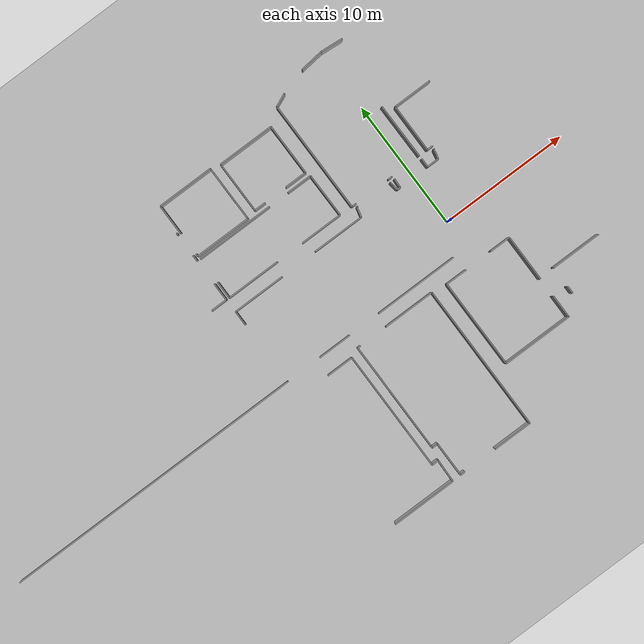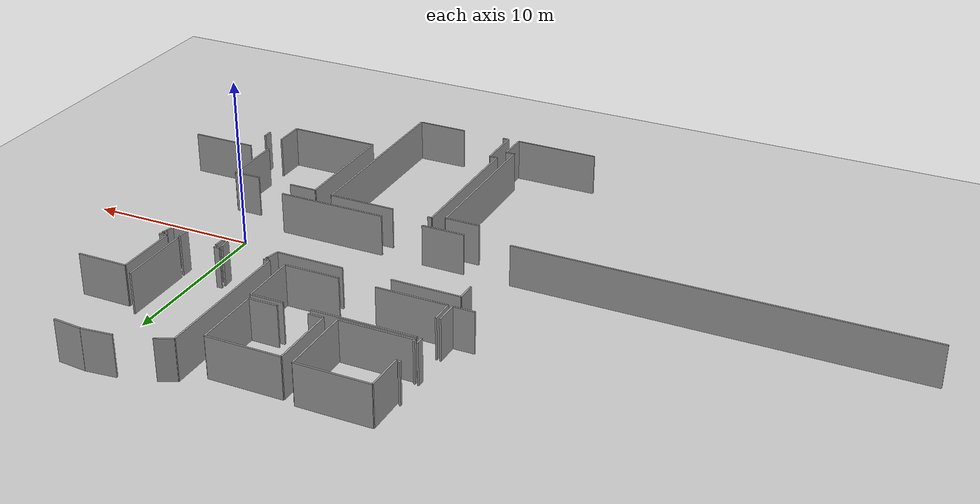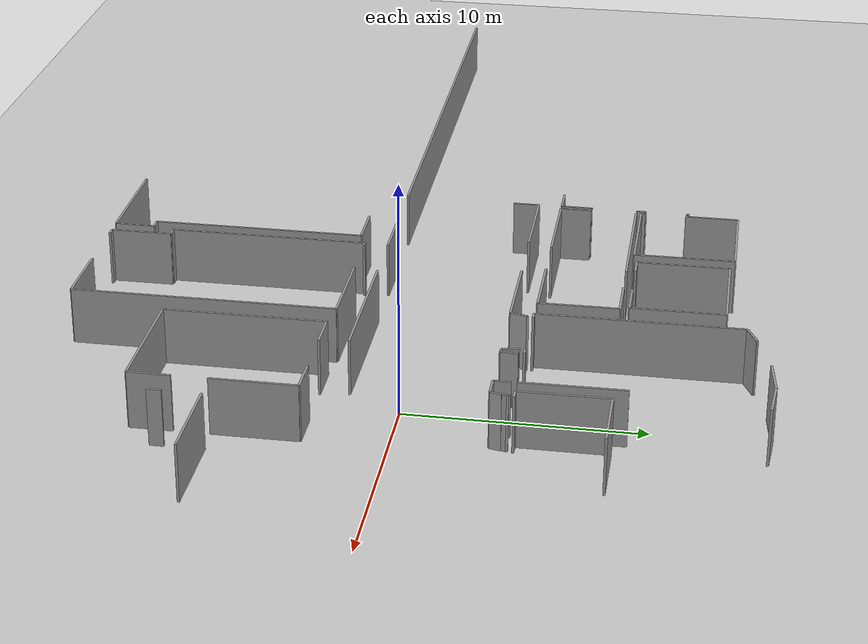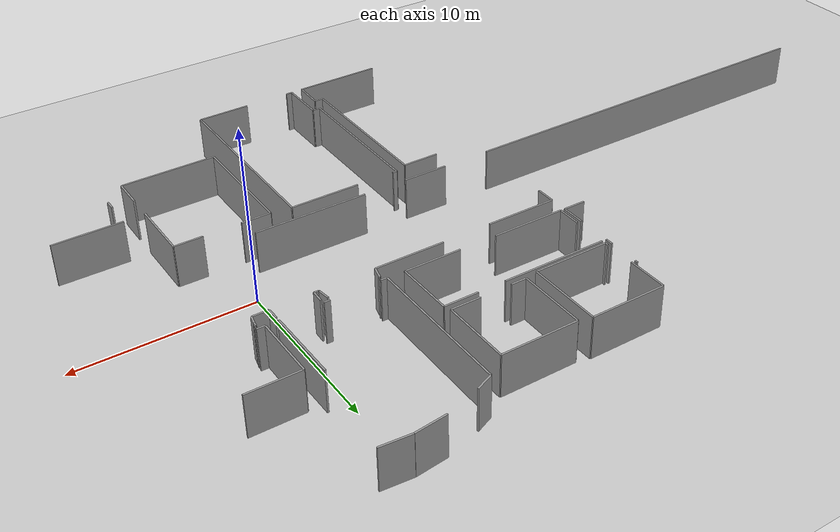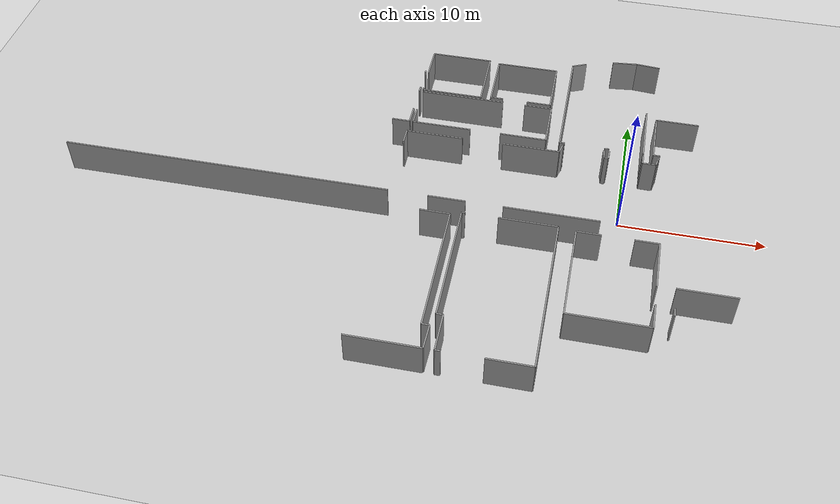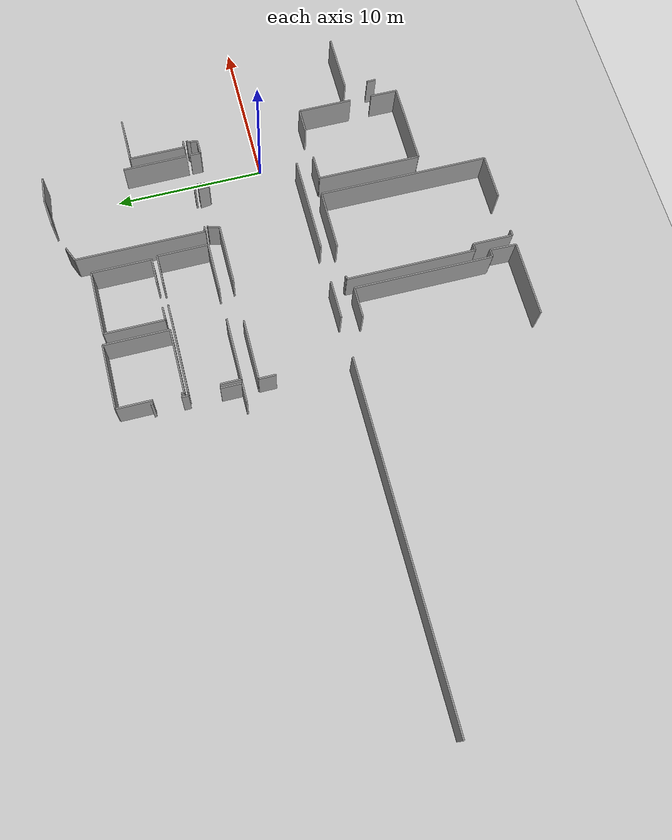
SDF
<sdf version="1.6">
 <world name="default">
  <model name="ground_plane">
   <static>1</static>
   <link name="link">
    <collision name="collision">
     <geometry><plane><normal>0 0 1</normal><size>100 100</size></plane></geometry>
     <surface><friction><ode><mu>100</mu><mu2>50</mu2></ode></friction></surface>
    </collision>
    <visual name="visual">
     <cast_shadows>0</cast_shadows>
     <geometry><plane><normal>0 0 1</normal><size>100 100</size></plane></geometry>
     <material>
      <script><uri>file://media/materials/scripts/gazebo.material</uri><name>Gazebo/Grey</name></script>
     </material>
    </visual>
   </link>
  </model>
  <model name="50056456">
   <static>1</static>
   <link name="Wall_32">
    <collision name="Wall_32_Collision">
     <geometry><box><size>6.50250311301 0.1 2.5</size></box></geometry>
     <pose>3.2512515565 0 1.25 0 0 0</pose>
    </collision>
    <visual name="Wall_32_Visual">
     <pose>3.2512515565 0 1.25 0 0 0</pose>
     <geometry><box><size>6.50250311301 0.1 2.5</size></box></geometry>
     <material>
      <script><uri>file://media/materials/scripts/gazebo.material</uri><name>Gazebo/Grey</name></script>
      <ambient>1 1 1 1</ambient>
     </material>
    </visual>
    <pose>54.3168746241 -17.0020245144 0 0 0 3.14159265359</pose>
   </link>
   <link name="Wall_33">
    <collision name="Wall_33_Collision">
     <geometry><box><size>2.58443241595 0.1 2.5</size></box></geometry>
     <pose>1.29221620797 0 1.25 0 0 0</pose>
    </collision>
    <visual name="Wall_33_Visual">
     <pose>1.29221620797 0 1.25 0 0 0</pose>
     <geometry><box><size>2.58443241595 0.1 2.5</size></box></geometry>
     <material>
      <script><uri>file://media/materials/scripts/gazebo.material</uri><name>Gazebo/Grey</name></script>
      <ambient>1 1 1 1</ambient>
     </material>
    </visual>
    <pose>45.2619586118 -17.0020245144 0 0 0 3.14159265359</pose>
   </link>
   <link name="Wall_34">
    <collision name="Wall_34_Collision">
     <geometry><box><size>23.3545949701 0.1 2.5</size></box></geometry>
     <pose>11.677297485 0 1.25 0 0 0</pose>
    </collision>
    <visual name="Wall_34_Visual">
     <pose>11.677297485 0 1.25 0 0 0</pose>
     <geometry><box><size>23.3545949701 0.1 2.5</size></box></geometry>
     <material>
      <script><uri>file://media/materials/scripts/gazebo.material</uri><name>Gazebo/Grey</name></script>
      <ambient>1 1 1 1</ambient>
     </material>
    </visual>
    <pose>39.8926753238 -17.0020245144 0 0 0 3.14159265359</pose>
   </link>
   <link name="Wall_48">
    <collision name="Wall_48_Collision">
     <geometry><box><size>1.14287650462 0.1 2.5</size></box></geometry>
     <pose>0.57143825231 0 1.25 0 0 0</pose>
    </collision>
    <visual name="Wall_48_Visual">
     <pose>0.57143825231 0 1.25 0 0 0</pose>
     <geometry><box><size>1.14287650462 0.1 2.5</size></box></geometry>
     <material>
      <script><uri>file://media/materials/scripts/gazebo.material</uri><name>Gazebo/Grey</name></script>
      <ambient>1 1 1 1</ambient>
     </material>
    </visual>
    <pose>39.9038567423 -12.0630564238 0 0 0 1.57079632679</pose>
   </link>
   <link name="Wall_49">
    <collision name="Wall_49_Collision">
     <geometry><box><size>4.05868550566 0.1 2.5</size></box></geometry>
     <pose>2.02934275283 0 1.25 0 0 0</pose>
    </collision>
    <visual name="Wall_49_Visual">
     <pose>2.02934275283 0 1.25 0 0 0</pose>
     <geometry><box><size>4.05868550566 0.1 2.5</size></box></geometry>
     <material>
      <script><uri>file://media/materials/scripts/gazebo.material</uri><name>Gazebo/Grey</name></script>
      <ambient>1 1 1 1</ambient>
     </material>
    </visual>
    <pose>39.9038567423 -10.9201799192 0 0 0 0.0</pose>
   </link>
   <link name="Wall_50">
    <collision name="Wall_50_Collision">
     <geometry><box><size>4.00955503037 0.1 2.5</size></box></geometry>
     <pose>2.00477751518 0 1.25 0 0 0</pose>
    </collision>
    <visual name="Wall_50_Visual">
     <pose>2.00477751518 0 1.25 0 0 0</pose>
     <geometry><box><size>4.00955503037 0.1 2.5</size></box></geometry>
     <material>
      <script><uri>file://media/materials/scripts/gazebo.material</uri><name>Gazebo/Grey</name></script>
      <ambient>1 1 1 1</ambient>
     </material>
    </visual>
    <pose>46.8470093941 -10.8973088359 0 0 0 0.0</pose>
   </link>
   <link name="Wall_51">
    <collision name="Wall_51_Collision">
     <geometry><box><size>0.763196289049 0.1 2.5</size></box></geometry>
     <pose>0.381598144524 0 1.25 0 0 0</pose>
    </collision>
    <visual name="Wall_51_Visual">
     <pose>0.381598144524 0 1.25 0 0 0</pose>
     <geometry><box><size>0.763196289049 0.1 2.5</size></box></geometry>
     <material>
      <script><uri>file://media/materials/scripts/gazebo.material</uri><name>Gazebo/Grey</name></script>
      <ambient>1 1 1 1</ambient>
     </material>
    </visual>
    <pose>50.8565644245 -10.8973088359 0 0 0 1.33669323767</pose>
   </link>
   <link name="Wall_52">
    <collision name="Wall_52_Collision">
     <geometry><box><size>0.0876133344174 0.1 2.5</size></box></geometry>
     <pose>0.0438066672087 0 1.25 0 0 0</pose>
    </collision>
    <visual name="Wall_52_Visual">
     <pose>0.0438066672087 0 1.25 0 0 0</pose>
     <geometry><box><size>0.0876133344174 0.1 2.5</size></box></geometry>
     <material>
      <script><uri>file://media/materials/scripts/gazebo.material</uri><name>Gazebo/Grey</name></script>
      <ambient>1 1 1 1</ambient>
     </material>
    </visual>
    <pose>51.0336035509 -10.1549304126 0 0 0 0.110443682847</pose>
   </link>
   <link name="Wall_53">
    <collision name="Wall_53_Collision">
     <geometry><box><size>0.722426218974 0.1 2.5</size></box></geometry>
     <pose>0.361213109487 0 1.25 0 0 0</pose>
    </collision>
    <visual name="Wall_53_Visual">
     <pose>0.361213109487 0 1.25 0 0 0</pose>
     <geometry><box><size>0.722426218974 0.1 2.5</size></box></geometry>
     <material>
      <script><uri>file://media/materials/scripts/gazebo.material</uri><name>Gazebo/Grey</name></script>
      <ambient>1 1 1 1</ambient>
     </material>
    </visual>
    <pose>53.9209507594 -10.145273733 0 0 0 -1.44216549223</pose>
   </link>
   <link name="Wall_54">
    <collision name="Wall_54_Collision">
     <geometry><box><size>0.261607380304 0.1 2.5</size></box></geometry>
     <pose>0.130803690152 0 1.25 0 0 0</pose>
    </collision>
    <visual name="Wall_54_Visual">
     <pose>0.130803690152 0 1.25 0 0 0</pose>
     <geometry><box><size>0.261607380304 0.1 2.5</size></box></geometry>
     <material>
      <script><uri>file://media/materials/scripts/gazebo.material</uri><name>Gazebo/Grey</name></script>
      <ambient>1 1 1 1</ambient>
     </material>
    </visual>
    <pose>54.0136210007 -10.8617315951 0 0 0 -0.0641558310726</pose>
   </link>
   <link name="Wall_55">
    <collision name="Wall_55_Collision">
     <geometry><box><size>0.733496942863 0.1 2.5</size></box></geometry>
     <pose>0.366748471432 0 1.25 0 0 0</pose>
    </collision>
    <visual name="Wall_55_Visual">
     <pose>0.366748471432 0 1.25 0 0 0</pose>
     <geometry><box><size>0.733496942863 0.1 2.5</size></box></geometry>
     <material>
      <script><uri>file://media/materials/scripts/gazebo.material</uri><name>Gazebo/Grey</name></script>
      <ambient>1 1 1 1</ambient>
     </material>
    </visual>
    <pose>54.2746901815 -10.8785037229 0 0 0 1.52481719472</pose>
   </link>
   <link name="Wall_56">
    <collision name="Wall_56_Collision">
     <geometry><box><size>0.715949615851 0.1 2.5</size></box></geometry>
     <pose>0.357974807925 0 1.25 0 0 0</pose>
    </collision>
    <visual name="Wall_56_Visual">
     <pose>0.357974807925 0 1.25 0 0 0</pose>
     <geometry><box><size>0.715949615851 0.1 2.5</size></box></geometry>
     <material>
      <script><uri>file://media/materials/scripts/gazebo.material</uri><name>Gazebo/Grey</name></script>
      <ambient>1 1 1 1</ambient>
     </material>
    </visual>
    <pose>56.6668360821 -10.1457819793 0 0 0 -1.57079632679</pose>
   </link>
   <link name="Wall_57">
    <collision name="Wall_57_Collision">
     <geometry><box><size>0.926532997891 0.1 2.5</size></box></geometry>
     <pose>0.463266498945 0 1.25 0 0 0</pose>
    </collision>
    <visual name="Wall_57_Visual">
     <pose>0.463266498945 0 1.25 0 0 0</pose>
     <geometry><box><size>0.926532997891 0.1 2.5</size></box></geometry>
     <material>
      <script><uri>file://media/materials/scripts/gazebo.material</uri><name>Gazebo/Grey</name></script>
      <ambient>1 1 1 1</ambient>
     </material>
    </visual>
    <pose>56.6668360821 -10.8617315951 0 0 0 0.0</pose>
   </link>
   <link name="Wall_58">
    <collision name="Wall_58_Collision">
     <geometry><box><size>0.490625804224 0.1 2.5</size></box></geometry>
     <pose>0.245312902112 0 1.25 0 0 0</pose>
    </collision>
    <visual name="Wall_58_Visual">
     <pose>0.245312902112 0 1.25 0 0 0</pose>
     <geometry><box><size>0.490625804224 0.1 2.5</size></box></geometry>
     <material>
      <script><uri>file://media/materials/scripts/gazebo.material</uri><name>Gazebo/Grey</name></script>
      <ambient>1 1 1 1</ambient>
     </material>
    </visual>
    <pose>57.59336908 -10.8617315951 0 0 0 1.36351350957</pose>
   </link>
   <link name="Wall_59">
    <collision name="Wall_59_Collision">
     <geometry><box><size>0.228939680597 0.1 2.5</size></box></geometry>
     <pose>0.114469840298 0 1.25 0 0 0</pose>
    </collision>
    <visual name="Wall_59_Visual">
     <pose>0.114469840298 0 1.25 0 0 0</pose>
     <geometry><box><size>0.228939680597 0.1 2.5</size></box></geometry>
     <material>
      <script><uri>file://media/materials/scripts/gazebo.material</uri><name>Gazebo/Grey</name></script>
      <ambient>1 1 1 1</ambient>
     </material>
    </visual>
    <pose>57.6943406775 -10.3816082607 0 0 0 1.45956707005</pose>
   </link>
   <link name="Wall_60">
    <collision name="Wall_60_Collision">
     <geometry><box><size>0.0841994697297 0.1 2.5</size></box></geometry>
     <pose>0.0420997348648 0 1.25 0 0 0</pose>
    </collision>
    <visual name="Wall_60_Visual">
     <pose>0.0420997348648 0 1.25 0 0 0</pose>
     <geometry><box><size>0.0841994697297 0.1 2.5</size></box></geometry>
     <material>
      <script><uri>file://media/materials/scripts/gazebo.material</uri><name>Gazebo/Grey</name></script>
      <ambient>1 1 1 1</ambient>
     </material>
    </visual>
    <pose>57.7197529923 -10.1540833355 0 0 0 0.0</pose>
   </link>
   <link name="Wall_82">
    <collision name="Wall_82_Collision">
     <geometry><box><size>5.00588718626 0.1 2.5</size></box></geometry>
     <pose>2.50294359313 0 1.25 0 0 0</pose>
    </collision>
    <visual name="Wall_82_Visual">
     <pose>2.50294359313 0 1.25 0 0 0</pose>
     <geometry><box><size>5.00588718626 0.1 2.5</size></box></geometry>
     <material>
      <script><uri>file://media/materials/scripts/gazebo.material</uri><name>Gazebo/Grey</name></script>
      <ambient>1 1 1 1</ambient>
     </material>
    </visual>
    <pose>44.9261772255 -29.4547364319 0 0 0 3.14159265359</pose>
   </link>
   <link name="Wall_92">
    <collision name="Wall_92_Collision">
     <geometry><box><size>2.0846568914 0.1 2.5</size></box></geometry>
     <pose>1.0423284457 0 1.25 0 0 0</pose>
    </collision>
    <visual name="Wall_92_Visual">
     <pose>1.0423284457 0 1.25 0 0 0</pose>
     <geometry><box><size>2.0846568914 0.1 2.5</size></box></geometry>
     <material>
      <script><uri>file://media/materials/scripts/gazebo.material</uri><name>Gazebo/Grey</name></script>
      <ambient>1 1 1 1</ambient>
     </material>
    </visual>
    <pose>42.376813804 -18.3497242764 0 0 0 0.0</pose>
   </link>
   <link name="Wall_93">
    <collision name="Wall_93_Collision">
     <geometry><box><size>9.33631504494 0.1 2.5</size></box></geometry>
     <pose>4.66815752247 0 1.25 0 0 0</pose>
    </collision>
    <visual name="Wall_93_Visual">
     <pose>4.66815752247 0 1.25 0 0 0</pose>
     <geometry><box><size>9.33631504494 0.1 2.5</size></box></geometry>
     <material>
      <script><uri>file://media/materials/scripts/gazebo.material</uri><name>Gazebo/Grey</name></script>
      <ambient>1 1 1 1</ambient>
     </material>
    </visual>
    <pose>44.4614706954 -18.3497242764 0 0 0 -1.57079632679</pose>
   </link>
   <link name="Wall_94">
    <collision name="Wall_94_Collision">
     <geometry><box><size>0.512312266524 0.1 2.5</size></box></geometry>
     <pose>0.256156133262 0 1.25 0 0 0</pose>
    </collision>
    <visual name="Wall_94_Visual">
     <pose>0.256156133262 0 1.25 0 0 0</pose>
     <geometry><box><size>0.512312266524 0.1 2.5</size></box></geometry>
     <material>
      <script><uri>file://media/materials/scripts/gazebo.material</uri><name>Gazebo/Grey</name></script>
      <ambient>1 1 1 1</ambient>
     </material>
    </visual>
    <pose>44.4614706954 -27.6860393213 0 0 0 0.0</pose>
   </link>
   <link name="Wall_95">
    <collision name="Wall_95_Collision">
     <geometry><box><size>1.7693376657 0.1 2.5</size></box></geometry>
     <pose>0.884668832848 0 1.25 0 0 0</pose>
    </collision>
    <visual name="Wall_95_Visual">
     <pose>0.884668832848 0 1.25 0 0 0</pose>
     <geometry><box><size>1.7693376657 0.1 2.5</size></box></geometry>
     <material>
      <script><uri>file://media/materials/scripts/gazebo.material</uri><name>Gazebo/Grey</name></script>
      <ambient>1 1 1 1</ambient>
     </material>
    </visual>
    <pose>44.9737829619 -27.6860393213 0 0 0 -1.59770553869</pose>
   </link>
   <link name="Wall_96">
    <collision name="Wall_96_Collision">
     <geometry><box><size>3.01000398126 0.1 2.5</size></box></geometry>
     <pose>1.50500199063 0 1.25 0 0 0</pose>
    </collision>
    <visual name="Wall_96_Visual">
     <pose>1.50500199063 0 1.25 0 0 0</pose>
     <geometry><box><size>3.01000398126 0.1 2.5</size></box></geometry>
     <material>
      <script><uri>file://media/materials/scripts/gazebo.material</uri><name>Gazebo/Grey</name></script>
      <ambient>1 1 1 1</ambient>
     </material>
    </visual>
    <pose>51.6509533853 -29.4337289184 0 0 0 3.14159265359</pose>
   </link>
   <link name="Wall_97">
    <collision name="Wall_97_Collision">
     <geometry><box><size>0.367970318416 0.1 2.5</size></box></geometry>
     <pose>0.183985159208 0 1.25 0 0 0</pose>
    </collision>
    <visual name="Wall_97_Visual">
     <pose>0.183985159208 0 1.25 0 0 0</pose>
     <geometry><box><size>0.367970318416 0.1 2.5</size></box></geometry>
     <material>
      <script><uri>file://media/materials/scripts/gazebo.material</uri><name>Gazebo/Grey</name></script>
      <ambient>1 1 1 1</ambient>
     </material>
    </visual>
    <pose>45.9965439252 -29.4337289184 0 0 0 3.14159265359</pose>
   </link>
   <link name="Wall_98">
    <collision name="Wall_98_Collision">
     <geometry><box><size>2.69573835481 0.1 2.5</size></box></geometry>
     <pose>1.3478691774 0 1.25 0 0 0</pose>
    </collision>
    <visual name="Wall_98_Visual">
     <pose>1.3478691774 0 1.25 0 0 0</pose>
     <geometry><box><size>2.69573835481 0.1 2.5</size></box></geometry>
     <material>
      <script><uri>file://media/materials/scripts/gazebo.material</uri><name>Gazebo/Grey</name></script>
      <ambient>1 1 1 1</ambient>
     </material>
    </visual>
    <pose>45.6285736068 -29.4337289184 0 0 0 1.57079632679</pose>
   </link>
   <link name="Wall_99">
    <collision name="Wall_99_Collision">
     <geometry><box><size>0.445562586296 0.1 2.5</size></box></geometry>
     <pose>0.222781293148 0 1.25 0 0 0</pose>
    </collision>
    <visual name="Wall_99_Visual">
     <pose>0.222781293148 0 1.25 0 0 0</pose>
     <geometry><box><size>0.445562586296 0.1 2.5</size></box></geometry>
     <material>
      <script><uri>file://media/materials/scripts/gazebo.material</uri><name>Gazebo/Grey</name></script>
      <ambient>1 1 1 1</ambient>
     </material>
    </visual>
    <pose>45.6285736068 -26.7379905636 0 0 0 3.14159265359</pose>
   </link>
   <link name="Wall_100">
    <collision name="Wall_100_Collision">
     <geometry><box><size>8.69084224882 0.1 2.5</size></box></geometry>
     <pose>4.34542112441 0 1.25 0 0 0</pose>
    </collision>
    <visual name="Wall_100_Visual">
     <pose>4.34542112441 0 1.25 0 0 0</pose>
     <geometry><box><size>8.69084224882 0.1 2.5</size></box></geometry>
     <material>
      <script><uri>file://media/materials/scripts/gazebo.material</uri><name>Gazebo/Grey</name></script>
      <ambient>1 1 1 1</ambient>
     </material>
    </visual>
    <pose>45.1830110205 -26.7379905636 0 0 0 1.57079632679</pose>
   </link>
   <link name="Wall_101">
    <collision name="Wall_101_Collision">
     <geometry><box><size>0.246160622771 0.1 2.5</size></box></geometry>
     <pose>0.123080311386 0 1.25 0 0 0</pose>
    </collision>
    <visual name="Wall_101_Visual">
     <pose>0.123080311386 0 1.25 0 0 0</pose>
     <geometry><box><size>0.246160622771 0.1 2.5</size></box></geometry>
     <material>
      <script><uri>file://media/materials/scripts/gazebo.material</uri><name>Gazebo/Grey</name></script>
      <ambient>1 1 1 1</ambient>
     </material>
    </visual>
    <pose>45.1830110205 -18.0471483147 0 0 0 0.0</pose>
   </link>
   <link name="Wall_102">
    <collision name="Wall_102_Collision">
     <geometry><box><size>3.99684887296 0.1 2.5</size></box></geometry>
     <pose>1.99842443648 0 1.25 0 0 0</pose>
    </collision>
    <visual name="Wall_102_Visual">
     <pose>1.99842443648 0 1.25 0 0 0</pose>
     <geometry><box><size>3.99684887296 0.1 2.5</size></box></geometry>
     <material>
      <script><uri>file://media/materials/scripts/gazebo.material</uri><name>Gazebo/Grey</name></script>
      <ambient>1 1 1 1</ambient>
     </material>
    </visual>
    <pose>47.6541045124 -18.0471483147 0 0 0 0.0</pose>
   </link>
   <link name="Wall_103">
    <collision name="Wall_103_Collision">
     <geometry><box><size>11.3865806036 0.1 2.5</size></box></geometry>
     <pose>5.69329030181 0 1.25 0 0 0</pose>
    </collision>
    <visual name="Wall_103_Visual">
     <pose>5.69329030181 0 1.25 0 0 0</pose>
     <geometry><box><size>11.3865806036 0.1 2.5</size></box></geometry>
     <material>
      <script><uri>file://media/materials/scripts/gazebo.material</uri><name>Gazebo/Grey</name></script>
      <ambient>1 1 1 1</ambient>
     </material>
    </visual>
    <pose>51.6509533853 -18.0471483147 0 0 0 -1.57079632679</pose>
   </link>
   <link name="Wall_104">
    <collision name="Wall_104_Collision">
     <geometry><box><size>1.27197106384 0.1 2.5</size></box></geometry>
     <pose>0.635985531922 0 1.25 0 0 0</pose>
    </collision>
    <visual name="Wall_104_Visual">
     <pose>0.635985531922 0 1.25 0 0 0</pose>
     <geometry><box><size>1.27197106384 0.1 2.5</size></box></geometry>
     <material>
      <script><uri>file://media/materials/scripts/gazebo.material</uri><name>Gazebo/Grey</name></script>
      <ambient>1 1 1 1</ambient>
     </material>
    </visual>
    <pose>39.8799691664 -9.86777125528 0 0 0 3.14159265359</pose>
   </link>
   <link name="Wall_118">
    <collision name="Wall_118_Collision">
     <geometry><box><size>0.161283491313 0.1 2.5</size></box></geometry>
     <pose>0.0806417456566 0 1.25 0 0 0</pose>
    </collision>
    <visual name="Wall_118_Visual">
     <pose>0.0806417456566 0 1.25 0 0 0</pose>
     <geometry><box><size>0.161283491313 0.1 2.5</size></box></geometry>
     <material>
      <script><uri>file://media/materials/scripts/gazebo.material</uri><name>Gazebo/Grey</name></script>
      <ambient>1 1 1 1</ambient>
     </material>
    </visual>
    <pose>39.8847127985 -4.05766901307 0 0 0 -1.57079632679</pose>
   </link>
   <link name="Wall_119">
    <collision name="Wall_119_Collision">
     <geometry><box><size>0.454880435059 0.1 2.5</size></box></geometry>
     <pose>0.227440217529 0 1.25 0 0 0</pose>
    </collision>
    <visual name="Wall_119_Visual">
     <pose>0.227440217529 0 1.25 0 0 0</pose>
     <geometry><box><size>0.454880435059 0.1 2.5</size></box></geometry>
     <material>
      <script><uri>file://media/materials/scripts/gazebo.material</uri><name>Gazebo/Grey</name></script>
      <ambient>1 1 1 1</ambient>
     </material>
    </visual>
    <pose>39.8847127985 -6.00154168043 0 0 0 -1.57079632679</pose>
   </link>
   <link name="Wall_120">
    <collision name="Wall_120_Collision">
     <geometry><box><size>1.40073482446 0.1 2.5</size></box></geometry>
     <pose>0.700367412228 0 1.25 0 0 0</pose>
    </collision>
    <visual name="Wall_120_Visual">
     <pose>0.700367412228 0 1.25 0 0 0</pose>
     <geometry><box><size>1.40073482446 0.1 2.5</size></box></geometry>
     <material>
      <script><uri>file://media/materials/scripts/gazebo.material</uri><name>Gazebo/Grey</name></script>
      <ambient>1 1 1 1</ambient>
     </material>
    </visual>
    <pose>39.8847127985 -8.46704446308 0 0 0 -1.5741828644</pose>
   </link>
   <link name="Wall_121">
    <collision name="Wall_121_Collision">
     <geometry><box><size>3.2739532244 0.1 2.5</size></box></geometry>
     <pose>1.6369766122 0 1.25 0 0 0</pose>
    </collision>
    <visual name="Wall_121_Visual">
     <pose>1.6369766122 0 1.25 0 0 0</pose>
     <geometry><box><size>3.2739532244 0.1 2.5</size></box></geometry>
     <material>
      <script><uri>file://media/materials/scripts/gazebo.material</uri><name>Gazebo/Grey</name></script>
      <ambient>1 1 1 1</ambient>
     </material>
    </visual>
    <pose>49.7743386445 -9.8836963059 0 0 0 3.14159265359</pose>
   </link>
   <link name="Wall_122">
    <collision name="Wall_122_Collision">
     <geometry><box><size>4.1942178513 0.1 2.5</size></box></geometry>
     <pose>2.09710892565 0 1.25 0 0 0</pose>
    </collision>
    <visual name="Wall_122_Visual">
     <pose>2.09710892565 0 1.25 0 0 0</pose>
     <geometry><box><size>4.1942178513 0.1 2.5</size></box></geometry>
     <material>
      <script><uri>file://media/materials/scripts/gazebo.material</uri><name>Gazebo/Grey</name></script>
      <ambient>1 1 1 1</ambient>
     </material>
    </visual>
    <pose>44.3305125664 -9.8836963059 0 0 0 3.14159265359</pose>
   </link>
   <link name="Wall_123">
    <collision name="Wall_123_Collision">
     <geometry><box><size>1.38039694036 0.1 2.5</size></box></geometry>
     <pose>0.690198470179 0 1.25 0 0 0</pose>
    </collision>
    <visual name="Wall_123_Visual">
     <pose>0.690198470179 0 1.25 0 0 0</pose>
     <geometry><box><size>1.38039694036 0.1 2.5</size></box></geometry>
     <material>
      <script><uri>file://media/materials/scripts/gazebo.material</uri><name>Gazebo/Grey</name></script>
      <ambient>1 1 1 1</ambient>
     </material>
    </visual>
    <pose>40.1362947151 -9.8836963059 0 0 0 1.57079632679</pose>
   </link>
   <link name="Wall_124">
    <collision name="Wall_124_Collision">
     <geometry><box><size>6.04762267795 0.1 2.5</size></box></geometry>
     <pose>3.02381133897 0 1.25 0 0 0</pose>
    </collision>
    <visual name="Wall_124_Visual">
     <pose>3.02381133897 0 1.25 0 0 0</pose>
     <geometry><box><size>6.04762267795 0.1 2.5</size></box></geometry>
     <material>
      <script><uri>file://media/materials/scripts/gazebo.material</uri><name>Gazebo/Grey</name></script>
      <ambient>1 1 1 1</ambient>
     </material>
    </visual>
    <pose>40.1362947151 -6.4643846408 0 0 0 0.0</pose>
   </link>
   <link name="Wall_125">
    <collision name="Wall_125_Collision">
     <geometry><box><size>1.96284719575 0.1 2.5</size></box></geometry>
     <pose>0.981423597876 0 1.25 0 0 0</pose>
    </collision>
    <visual name="Wall_125_Visual">
     <pose>0.981423597876 0 1.25 0 0 0</pose>
     <geometry><box><size>1.96284719575 0.1 2.5</size></box></geometry>
     <material>
      <script><uri>file://media/materials/scripts/gazebo.material</uri><name>Gazebo/Grey</name></script>
      <ambient>1 1 1 1</ambient>
     </material>
    </visual>
    <pose>47.7876038728 -6.4643846408 0 0 0 0.0</pose>
   </link>
   <link name="Wall_126">
    <collision name="Wall_126_Collision">
     <geometry><box><size>3.41939510431 0.1 2.5</size></box></geometry>
     <pose>1.70969755215 0 1.25 0 0 0</pose>
    </collision>
    <visual name="Wall_126_Visual">
     <pose>1.70969755215 0 1.25 0 0 0</pose>
     <geometry><box><size>3.41939510431 0.1 2.5</size></box></geometry>
     <material>
      <script><uri>file://media/materials/scripts/gazebo.material</uri><name>Gazebo/Grey</name></script>
      <ambient>1 1 1 1</ambient>
     </material>
    </visual>
    <pose>49.7504510686 -6.4643846408 0 0 0 -1.56381036305</pose>
   </link>
   <link name="Wall_132">
    <collision name="Wall_132_Collision">
     <geometry><box><size>4.36295562163 0.1 2.5</size></box></geometry>
     <pose>2.18147781081 0 1.25 0 0 0</pose>
    </collision>
    <visual name="Wall_132_Visual">
     <pose>2.18147781081 0 1.25 0 0 0</pose>
     <geometry><box><size>4.36295562163 0.1 2.5</size></box></geometry>
     <material>
      <script><uri>file://media/materials/scripts/gazebo.material</uri><name>Gazebo/Grey</name></script>
      <ambient>1 1 1 1</ambient>
     </material>
    </visual>
    <pose>44.4787510694 -6.23753737728 0 0 0 3.14159265359</pose>
   </link>
   <link name="Wall_133">
    <collision name="Wall_133_Collision">
     <geometry><box><size>0.193811254267 0.1 2.5</size></box></geometry>
     <pose>0.0969056271336 0 1.25 0 0 0</pose>
    </collision>
    <visual name="Wall_133_Visual">
     <pose>0.0969056271336 0 1.25 0 0 0</pose>
     <geometry><box><size>0.193811254267 0.1 2.5</size></box></geometry>
     <material>
      <script><uri>file://media/materials/scripts/gazebo.material</uri><name>Gazebo/Grey</name></script>
      <ambient>1 1 1 1</ambient>
     </material>
    </visual>
    <pose>40.1157954478 -6.23753737728 0 0 0 1.57079632679</pose>
   </link>
   <link name="Wall_134">
    <collision name="Wall_134_Collision">
     <geometry><box><size>2.35385801293 0.1 2.5</size></box></geometry>
     <pose>1.17692900646 0 1.25 0 0 0</pose>
    </collision>
    <visual name="Wall_134_Visual">
     <pose>1.17692900646 0 1.25 0 0 0</pose>
     <geometry><box><size>2.35385801293 0.1 2.5</size></box></geometry>
     <material>
      <script><uri>file://media/materials/scripts/gazebo.material</uri><name>Gazebo/Grey</name></script>
      <ambient>1 1 1 1</ambient>
     </material>
    </visual>
    <pose>40.1157954478 -4.23657170932 0 0 0 1.57079632679</pose>
   </link>
   <link name="Wall_135">
    <collision name="Wall_135_Collision">
     <geometry><box><size>4.35041887966 0.1 2.5</size></box></geometry>
     <pose>2.17520943983 0 1.25 0 0 0</pose>
    </collision>
    <visual name="Wall_135_Visual">
     <pose>2.17520943983 0 1.25 0 0 0</pose>
     <geometry><box><size>4.35041887966 0.1 2.5</size></box></geometry>
     <material>
      <script><uri>file://media/materials/scripts/gazebo.material</uri><name>Gazebo/Grey</name></script>
      <ambient>1 1 1 1</ambient>
     </material>
    </visual>
    <pose>40.1157954478 -1.88271369639 0 0 0 0.0</pose>
   </link>
   <link name="Wall_136">
    <collision name="Wall_136_Collision">
     <geometry><box><size>4.35484172635 0.1 2.5</size></box></geometry>
     <pose>2.17742086317 0 1.25 0 0 0</pose>
    </collision>
    <visual name="Wall_136_Visual">
     <pose>2.17742086317 0 1.25 0 0 0</pose>
     <geometry><box><size>4.35484172635 0.1 2.5</size></box></geometry>
     <material>
      <script><uri>file://media/materials/scripts/gazebo.material</uri><name>Gazebo/Grey</name></script>
      <ambient>1 1 1 1</ambient>
     </material>
    </visual>
    <pose>44.4662143275 -1.88271369639 0 0 0 -1.5679175174</pose>
   </link>
   <link name="Wall_137">
    <collision name="Wall_137_Collision">
     <geometry><box><size>1.7094017094 0.1 2.5</size></box></geometry>
     <pose>0.854700854701 0 1.25 0 0 0</pose>
    </collision>
    <visual name="Wall_137_Visual">
     <pose>0.854700854701 0 1.25 0 0 0</pose>
     <geometry><box><size>1.7094017094 0.1 2.5</size></box></geometry>
     <material>
      <script><uri>file://media/materials/scripts/gazebo.material</uri><name>Gazebo/Grey</name></script>
      <ambient>1 1 1 1</ambient>
     </material>
    </visual>
    <pose>49.6140716458 -6.0806586872 0 0 0 3.14159265359</pose>
   </link>
   <link name="Wall_138">
    <collision name="Wall_138_Collision">
     <geometry><box><size>0.891125172592 0.1 2.5</size></box></geometry>
     <pose>0.445562586296 0 1.25 0 0 0</pose>
    </collision>
    <visual name="Wall_138_Visual">
     <pose>0.445562586296 0 1.25 0 0 0</pose>
     <geometry><box><size>0.891125172592 0.1 2.5</size></box></geometry>
     <material>
      <script><uri>file://media/materials/scripts/gazebo.material</uri><name>Gazebo/Grey</name></script>
      <ambient>1 1 1 1</ambient>
     </material>
    </visual>
    <pose>46.1031062319 -6.0806586872 0 0 0 3.14159265359</pose>
   </link>
   <link name="Wall_139">
    <collision name="Wall_139_Collision">
     <geometry><box><size>4.00413373654 0.1 2.5</size></box></geometry>
     <pose>2.00206686827 0 1.25 0 0 0</pose>
    </collision>
    <visual name="Wall_139_Visual">
     <pose>2.00206686827 0 1.25 0 0 0</pose>
     <geometry><box><size>4.00413373654 0.1 2.5</size></box></geometry>
     <material>
      <script><uri>file://media/materials/scripts/gazebo.material</uri><name>Gazebo/Grey</name></script>
      <ambient>1 1 1 1</ambient>
     </material>
    </visual>
    <pose>45.2119810594 -6.0806586872 0 0 0 1.57079632679</pose>
   </link>
   <link name="Wall_140">
    <collision name="Wall_140_Collision">
     <geometry><box><size>4.38802910557 0.1 2.5</size></box></geometry>
     <pose>2.19401455279 0 1.25 0 0 0</pose>
    </collision>
    <visual name="Wall_140_Visual">
     <pose>2.19401455279 0 1.25 0 0 0</pose>
     <geometry><box><size>4.38802910557 0.1 2.5</size></box></geometry>
     <material>
      <script><uri>file://media/materials/scripts/gazebo.material</uri><name>Gazebo/Grey</name></script>
      <ambient>1 1 1 1</ambient>
     </material>
    </visual>
    <pose>45.2119810594 -2.07652495066 0 0 0 0.0</pose>
   </link>
   <link name="Wall_141">
    <collision name="Wall_141_Collision">
     <geometry><box><size>4.00415842661 0.1 2.5</size></box></geometry>
     <pose>2.0020792133 0 1.25 0 0 0</pose>
    </collision>
    <visual name="Wall_141_Visual">
     <pose>2.0020792133 0 1.25 0 0 0</pose>
     <geometry><box><size>4.00415842661 0.1 2.5</size></box></geometry>
     <material>
      <script><uri>file://media/materials/scripts/gazebo.material</uri><name>Gazebo/Grey</name></script>
      <ambient>1 1 1 1</ambient>
     </material>
    </visual>
    <pose>49.6000101649 -2.07652495066 0 0 0 -1.56728460017</pose>
   </link>
   <link name="Wall_142">
    <collision name="Wall_142_Collision">
     <geometry><box><size>0.339000279535 0.1 2.5</size></box></geometry>
     <pose>0.169500139768 0 1.25 0 0 0</pose>
    </collision>
    <visual name="Wall_142_Visual">
     <pose>0.169500139768 0 1.25 0 0 0</pose>
     <geometry><box><size>0.339000279535 0.1 2.5</size></box></geometry>
     <material>
      <script><uri>file://media/materials/scripts/gazebo.material</uri><name>Gazebo/Grey</name></script>
      <ambient>1 1 1 1</ambient>
     </material>
    </visual>
    <pose>54.2687606414 -9.92249243984 0 0 0 3.14159265359</pose>
   </link>
   <link name="Wall_143">
    <collision name="Wall_143_Collision">
     <geometry><box><size>0.371528042489 0.1 2.5</size></box></geometry>
     <pose>0.185764021245 0 1.25 0 0 0</pose>
    </collision>
    <visual name="Wall_143_Visual">
     <pose>0.185764021245 0 1.25 0 0 0</pose>
     <geometry><box><size>0.371528042489 0.1 2.5</size></box></geometry>
     <material>
      <script><uri>file://media/materials/scripts/gazebo.material</uri><name>Gazebo/Grey</name></script>
      <ambient>1 1 1 1</ambient>
     </material>
    </visual>
    <pose>51.1384717034 -9.92249243984 0 0 0 3.14159265359</pose>
   </link>
   <link name="Wall_144">
    <collision name="Wall_144_Collision">
     <geometry><box><size>8.71151093153 0.1 2.5</size></box></geometry>
     <pose>4.35575546577 0 1.25 0 0 0</pose>
    </collision>
    <visual name="Wall_144_Visual">
     <pose>4.35575546577 0 1.25 0 0 0</pose>
     <geometry><box><size>8.71151093153 0.1 2.5</size></box></geometry>
     <material>
      <script><uri>file://media/materials/scripts/gazebo.material</uri><name>Gazebo/Grey</name></script>
      <ambient>1 1 1 1</ambient>
     </material>
    </visual>
    <pose>50.7669436609 -9.92249243984 0 0 0 1.57079632679</pose>
   </link>
   <link name="Wall_145">
    <collision name="Wall_145_Collision">
     <geometry><box><size>1.06566929897 0.1 2.5</size></box></geometry>
     <pose>0.532834649485 0 1.25 0 0 0</pose>
    </collision>
    <visual name="Wall_145_Visual">
     <pose>0.532834649485 0 1.25 0 0 0</pose>
     <geometry><box><size>1.06566929897 0.1 2.5</size></box></geometry>
     <material>
      <script><uri>file://media/materials/scripts/gazebo.material</uri><name>Gazebo/Grey</name></script>
      <ambient>1 1 1 1</ambient>
     </material>
    </visual>
    <pose>50.7669436609 -1.21098150831 0 0 0 0.408377838336</pose>
   </link>
   <link name="Wall_146">
    <collision name="Wall_146_Collision">
     <geometry><box><size>1.81234276415 0.1 2.5</size></box></geometry>
     <pose>0.906171382074 0 1.25 0 0 0</pose>
    </collision>
    <visual name="Wall_146_Visual">
     <pose>0.906171382074 0 1.25 0 0 0</pose>
     <geometry><box><size>1.81234276415 0.1 2.5</size></box></geometry>
     <material>
      <script><uri>file://media/materials/scripts/gazebo.material</uri><name>Gazebo/Grey</name></script>
      <ambient>1 1 1 1</ambient>
     </material>
    </visual>
    <pose>53.7278171669 -0.19736897834 0 0 0 0.109119094361</pose>
   </link>
   <link name="Wall_147">
    <collision name="Wall_147_Collision">
     <geometry><box><size>1.72731895275 0.1 2.5</size></box></geometry>
     <pose>0.863659476376 0 1.25 0 0 0</pose>
    </collision>
    <visual name="Wall_147_Visual">
     <pose>0.863659476376 0 1.25 0 0 0</pose>
     <geometry><box><size>1.72731895275 0.1 2.5</size></box></geometry>
     <material>
      <script><uri>file://media/materials/scripts/gazebo.material</uri><name>Gazebo/Grey</name></script>
      <ambient>1 1 1 1</ambient>
     </material>
    </visual>
    <pose>55.5293808713 -0.0 0 0 0 -0.0849412999922</pose>
   </link>
   <link name="Wall_151">
    <collision name="Wall_151_Collision">
     <geometry><box><size>4.3493294546 0.1 2.5</size></box></geometry>
     <pose>2.1746647273 0 1.25 0 0 0</pose>
    </collision>
    <visual name="Wall_151_Visual">
     <pose>2.1746647273 0 1.25 0 0 0</pose>
     <geometry><box><size>4.3493294546 0.1 2.5</size></box></geometry>
     <material>
      <script><uri>file://media/materials/scripts/gazebo.material</uri><name>Gazebo/Grey</name></script>
      <ambient>1 1 1 1</ambient>
     </material>
    </visual>
    <pose>56.6226186543 -5.5732594682 0 0 0 -1.56413547174</pose>
   </link>
   <link name="Wall_153">
    <collision name="Wall_153_Collision">
     <geometry><box><size>0.468264254191 0.1 2.5</size></box></geometry>
     <pose>0.234132127095 0 1.25 0 0 0</pose>
    </collision>
    <visual name="Wall_153_Visual">
     <pose>0.234132127095 0 1.25 0 0 0</pose>
     <geometry><box><size>0.468264254191 0.1 2.5</size></box></geometry>
     <material>
      <script><uri>file://media/materials/scripts/gazebo.material</uri><name>Gazebo/Grey</name></script>
      <ambient>1 1 1 1</ambient>
     </material>
    </visual>
    <pose>57.8275012071 -9.90317908058 0 0 0 3.14159265359</pose>
   </link>
   <link name="Wall_154">
    <collision name="Wall_154_Collision">
     <geometry><box><size>3.74628344896 0.1 2.5</size></box></geometry>
     <pose>1.87314172448 0 1.25 0 0 0</pose>
    </collision>
    <visual name="Wall_154_Visual">
     <pose>1.87314172448 0 1.25 0 0 0</pose>
     <geometry><box><size>3.74628344896 0.1 2.5</size></box></geometry>
     <material>
      <script><uri>file://media/materials/scripts/gazebo.material</uri><name>Gazebo/Grey</name></script>
      <ambient>1 1 1 1</ambient>
     </material>
    </visual>
    <pose>57.3592369529 -9.90317908058 0 0 0 1.57079632679</pose>
   </link>
   <link name="Wall_155">
    <collision name="Wall_155_Collision">
     <geometry><box><size>3.00763216521 0.1 2.5</size></box></geometry>
     <pose>1.50381608261 0 1.25 0 0 0</pose>
    </collision>
    <visual name="Wall_155_Visual">
     <pose>1.50381608261 0 1.25 0 0 0</pose>
     <geometry><box><size>3.00763216521 0.1 2.5</size></box></geometry>
     <material>
      <script><uri>file://media/materials/scripts/gazebo.material</uri><name>Gazebo/Grey</name></script>
      <ambient>1 1 1 1</ambient>
     </material>
    </visual>
    <pose>57.3592369529 -6.15689563162 0 0 0 0.0</pose>
   </link>
   <link name="Wall_234">
    <collision name="Wall_234_Collision">
     <geometry><box><size>0.604304846128 0.1 2.5</size></box></geometry>
     <pose>0.302152423064 0 1.25 0 0 0</pose>
    </collision>
    <visual name="Wall_234_Visual">
     <pose>0.302152423064 0 1.25 0 0 0</pose>
     <geometry><box><size>0.604304846128 0.1 2.5</size></box></geometry>
     <material>
      <script><uri>file://media/materials/scripts/gazebo.material</uri><name>Gazebo/Grey</name></script>
      <ambient>1 1 1 1</ambient>
     </material>
    </visual>
    <pose>59.4698144054 -23.9761801903 0 0 0 1.57079632679</pose>
   </link>
   <link name="Wall_235">
    <collision name="Wall_235_Collision">
     <geometry><box><size>3.894521952 0.1 2.5</size></box></geometry>
     <pose>1.947260976 0 1.25 0 0 0</pose>
    </collision>
    <visual name="Wall_235_Visual">
     <pose>1.947260976 0 1.25 0 0 0</pose>
     <geometry><box><size>3.894521952 0.1 2.5</size></box></geometry>
     <material>
      <script><uri>file://media/materials/scripts/gazebo.material</uri><name>Gazebo/Grey</name></script>
      <ambient>1 1 1 1</ambient>
     </material>
    </visual>
    <pose>59.4698144054 -21.7678500335 0 0 0 0.0</pose>
   </link>
   <link name="Wall_242">
    <collision name="Wall_242_Collision">
     <geometry><box><size>5.43501647565 0.1 2.5</size></box></geometry>
     <pose>2.71750823783 0 1.25 0 0 0</pose>
    </collision>
    <visual name="Wall_242_Visual">
     <pose>2.71750823783 0 1.25 0 0 0</pose>
     <geometry><box><size>5.43501647565 0.1 2.5</size></box></geometry>
     <material>
      <script><uri>file://media/materials/scripts/gazebo.material</uri><name>Gazebo/Grey</name></script>
      <ambient>1 1 1 1</ambient>
     </material>
    </visual>
    <pose>58.2610352977 -25.1293910362 0 0 0 3.14159265359</pose>
   </link>
   <link name="Wall_243">
    <collision name="Wall_243_Collision">
     <geometry><box><size>6.91452144376 0.1 2.5</size></box></geometry>
     <pose>3.45726072188 0 1.25 0 0 0</pose>
    </collision>
    <visual name="Wall_243_Visual">
     <pose>3.45726072188 0 1.25 0 0 0</pose>
     <geometry><box><size>6.91452144376 0.1 2.5</size></box></geometry>
     <material>
      <script><uri>file://media/materials/scripts/gazebo.material</uri><name>Gazebo/Grey</name></script>
      <ambient>1 1 1 1</ambient>
     </material>
    </visual>
    <pose>52.8260188221 -25.1293910362 0 0 0 1.57079632679</pose>
   </link>
   <link name="Wall_244">
    <collision name="Wall_244_Collision">
     <geometry><box><size>1.67602686929 0.1 2.5</size></box></geometry>
     <pose>0.838013434644 0 1.25 0 0 0</pose>
    </collision>
    <visual name="Wall_244_Visual">
     <pose>0.838013434644 0 1.25 0 0 0</pose>
     <geometry><box><size>1.67602686929 0.1 2.5</size></box></geometry>
     <material>
      <script><uri>file://media/materials/scripts/gazebo.material</uri><name>Gazebo/Grey</name></script>
      <ambient>1 1 1 1</ambient>
     </material>
    </visual>
    <pose>52.8260188221 -18.2148695925 0 0 0 0.0</pose>
   </link>
   <link name="Wall_245">
    <collision name="Wall_245_Collision">
     <geometry><box><size>1.61723971437 0.1 2.5</size></box></geometry>
     <pose>0.808619857183 0 1.25 0 0 0</pose>
    </collision>
    <visual name="Wall_245_Visual">
     <pose>0.808619857183 0 1.25 0 0 0</pose>
     <geometry><box><size>1.61723971437 0.1 2.5</size></box></geometry>
     <material>
      <script><uri>file://media/materials/scripts/gazebo.material</uri><name>Gazebo/Grey</name></script>
      <ambient>1 1 1 1</ambient>
     </material>
    </visual>
    <pose>56.6498945389 -18.2148695925 0 0 0 0.0</pose>
   </link>
   <link name="Wall_246">
    <collision name="Wall_246_Collision">
     <geometry><box><size>3.62616790763 0.1 2.5</size></box></geometry>
     <pose>1.81308395382 0 1.25 0 0 0</pose>
    </collision>
    <visual name="Wall_246_Visual">
     <pose>1.81308395382 0 1.25 0 0 0</pose>
     <geometry><box><size>3.62616790763 0.1 2.5</size></box></geometry>
     <material>
      <script><uri>file://media/materials/scripts/gazebo.material</uri><name>Gazebo/Grey</name></script>
      <ambient>1 1 1 1</ambient>
     </material>
    </visual>
    <pose>58.2671342533 -18.2148695925 0 0 0 -1.57079632679</pose>
   </link>
   <link name="Wall_247">
    <collision name="Wall_247_Collision">
     <geometry><box><size>1.80868943554 0.1 2.5</size></box></geometry>
     <pose>0.904344717772 0 1.25 0 0 0</pose>
    </collision>
    <visual name="Wall_247_Visual">
     <pose>0.904344717772 0 1.25 0 0 0</pose>
     <geometry><box><size>1.80868943554 0.1 2.5</size></box></geometry>
     <material>
      <script><uri>file://media/materials/scripts/gazebo.material</uri><name>Gazebo/Grey</name></script>
      <ambient>1 1 1 1</ambient>
     </material>
    </visual>
    <pose>58.2671342533 -23.3207118836 0 0 0 -1.57416836347</pose>
   </link>
   <pose>-55.55 14.7486150288 0 0 0 0</pose>
  </model>
 </world>
</sdf>
